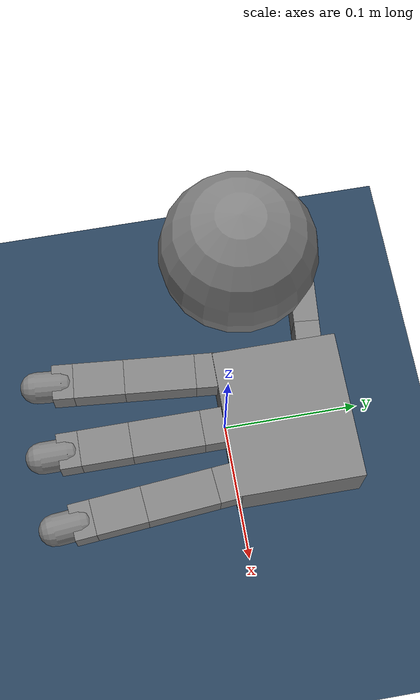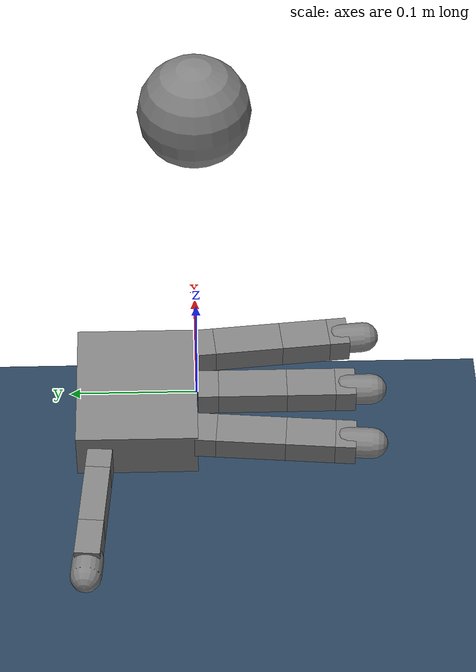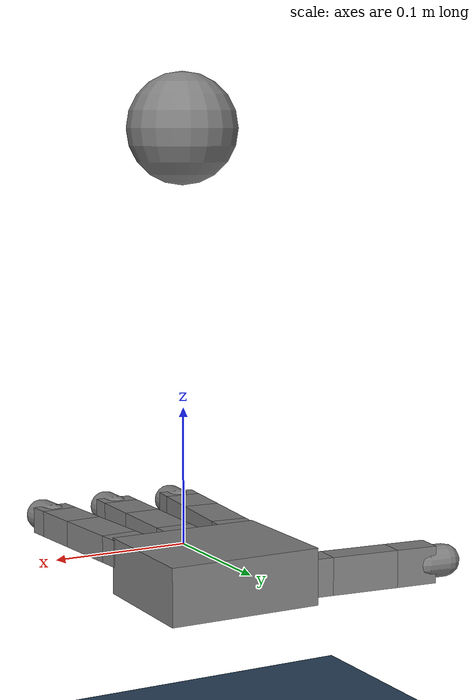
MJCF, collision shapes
<mujoco model="inhand rotation allegro scene">
  <include file="allegro_right.xml"/>
  <include file="ball.xml"/>

  <statistic center="0 0 0.1" extent="0.8"/>

  <visual>
    <headlight diffuse="0.6 0.6 0.6" ambient="0.3 0.3 0.3" specular="0 0 0"/>
    <rgba haze="0.15 0.25 0.35 1"/>
    <!-- default camera -->
    <global azimuth="-130" elevation="-20"/>
  </visual>

  <asset>
    <texture type="skybox" builtin="gradient" rgb1="0.3 0.5 0.7" rgb2="0 0 0" width="512" height="3072"/>
    <texture type="2d" name="groundplane" builtin="checker" mark="edge" rgb1="0.2 0.3 0.4" rgb2="0.1 0.2 0.3"
      markrgb="0.8 0.8 0.8" width="300" height="300"/>
    <material name="groundplane" texture="groundplane" texuniform="true" texrepeat="5 5" reflectance="0.2"/>
  </asset>

  <worldbody>
    <light pos="0 0 1.5" dir="0 0 -1" directional="true"/>
    <geom name="floor" pos="0 0 -0.2" size="0 0 0.05" type="plane" material="groundplane"/>
  </worldbody>

  <keyframe>
    <key name="home"
      qpos="0.082 1.244 0.265 0.298
            0.005 1.096 0.080 0.150
            0.029 1.337 0.285 0.317
            1.104 1.163 0.953 -0.138
            -0.01 -0.01 0.13
            1 0 0 0"
      ctrl="0.082 1.244 0.265 0.298
            0.005 1.096 0.080 0.150
            0.029 1.337 0.285 0.317
            1.104 1.163 0.953 -0.138"/>
  </keyframe>

  <sensor>
    <contact name="ff_contact" geom1="ff_tip_col" geom2="ball" data="found" num="1" reduce="mindist"/>
    <contact name="mf_contact" geom1="mf_tip_col" geom2="ball" data="found" num="1" reduce="mindist"/>
    <contact name="rf_contact" geom1="rf_tip_col" geom2="ball" data="found" num="1" reduce="mindist"/>
    <contact name="th_contact" geom1="th_tip_col" geom2="ball" data="found" num="1" reduce="mindist"/>
  </sensor>

</mujoco>

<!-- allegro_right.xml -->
<mujoco model="allegro_right">
  <compiler angle="radian" meshdir="assets" autolimits="true"/>

  <option cone="elliptic" impratio="40" noslip_iterations="5" noslip_tolerance="1e-6"/>

  <default>
    <default class="allegro_right">
      <joint axis="0 1 0" damping=".1" armature="0.01"/>
      <position kp="1"/>
      <geom density="800"/>

      <default class="visual">
        <geom type="mesh" contype="0" conaffinity="0" group="2" material="black"/>
        <default class="palm_visual">
          <geom mesh="base_link"/>
        </default>
        <default class="base_visual">
          <geom mesh="link_0.0"/>
        </default>
        <default class="proximal_visual">
          <geom mesh="link_1.0"/>
        </default>
        <default class="medial_visual">
          <geom mesh="link_2.0"/>
        </default>
        <default class="distal_visual">
          <geom mesh="link_3.0"/>
        </default>
        <default class="fingertip_visual">
          <geom pos="0 0 0.0267" material="white" mesh="link_3.0_tip"/>
        </default>
        <default class="thumbtip_visual">
          <geom pos="0 0 0.0423" material="white" mesh="link_15.0_tip"/>
        </default>
      </default>

      <default class="collision">
        <geom group="3" type="box" mass="0"/>
        <default class="palm_collision">
          <geom size="0.0204 0.0565 0.0475" pos="-0.0093 0 -0.0475"/>
        </default>
        <default class="base_collision">
          <geom size="0.0098 0.01375 0.0082" pos="0 0 0.0082"/>
          <default class="thumb_base_collision">
            <geom size="0.0179 0.017 0.02275" pos="-0.0179 0.009 0.0145"/>
          </default>
        </default>
        <default class="proximal_collision">
          <geom size="0.0098 0.01375 0.027" pos="0 0 0.027"/>
          <default class="thumb_proximal_collision">
            <geom size="0.0098 0.01375 0.00885" pos="0 0 0.00885"/>
          </default>
        </default>
        <default class="medial_collision">
          <geom size="0.0098 0.01375 0.0192" pos="0 0 0.0192"/>
          <default class="thumb_medial_collision">
            <geom size="0.0098 0.01375 0.0257" pos="0 0 0.0257"/>
          </default>
        </default>
        <default class="distal_collision">
          <geom size="0.0098 0.01375 0.008" pos="0 0 0.008"/>
          <default class="thumb_distal_collision">
            <geom size="0.0098 0.01375 0.0157" pos="0 0 0.0157"/>
          </default>
        </default>
        <default class="fingertip_collision">
          <geom type="capsule" size="0.012 0.01" pos="0 0 0.019"
                condim="6" friction="2.0 0.05 0.01"
                solimp="0.9 0.95 0.001" solref="0.02 1"/>
          <default class="thumbtip_collision">
            <geom type="capsule" size="0.012 0.008" pos="0 0 0.035"
                  condim="6" friction="2.0 0.05 0.01"
                  solimp="0.9 0.95 0.001" solref="0.02 1"/>
          </default>
        </default>
      </default>

      <default class="base">
        <joint axis="0 0 1" range="-0.47 0.47"/>
        <position ctrlrange="-0.47 0.47"/>
      </default>
      <default class="proximal">
        <joint range="-0.196 1.61"/>
        <position ctrlrange="-0.196 1.61"/>
      </default>
      <default class="medial">
        <joint range="-0.174 1.709"/>
        <position ctrlrange="-0.174 1.709"/>
      </default>
      <default class="distal">
        <joint range="-0.227 1.618"/>
        <position ctrlrange="-0.227 1.618"/>
      </default>
      <default class="thumb_base">
        <joint axis="-1 0 0" range="0.263 1.396"/>
        <position ctrlrange="0.263 1.396"/>
      </default>
      <default class="thumb_proximal">
        <joint axis="0 0 1" range="-0.105 1.163"/>
        <position ctrlrange="-0.105 1.163"/>
      </default>
      <default class="thumb_medial">
        <joint range="-0.189 1.644"/>
        <position ctrlrange="-0.189 1.644"/>
      </default>
      <default class="thumb_distal">
        <joint range="-0.162 1.719"/>
        <position ctrlrange="-0.162 1.719"/>
      </default>
    </default>
  </default>

  <asset>
    <material name="black" rgba="0.2 0.2 0.2 1"/>
    <material name="white" rgba="0.9 0.9 0.9 1"/>

    <mesh file="base_link.stl"/>
    <mesh file="link_0.0.stl"/>
    <mesh file="link_1.0.stl"/>
    <mesh file="link_2.0.stl"/>
    <mesh file="link_3.0.stl"/>
    <mesh file="link_3.0_tip.stl"/>
    <mesh file="link_12.0_right.stl"/>
    <mesh file="link_13.0.stl"/>
    <mesh file="link_14.0.stl"/>
    <mesh file="link_15.0.stl"/>
    <mesh file="link_15.0_tip.stl"/>
  </asset>

  <worldbody>
    <body name="palm" quat="0.5 0.5 -0.5 0.5" childclass="allegro_right" gravcomp="1">
      <geom class="palm_visual" mesh="base_link"/>
      <geom class="palm_collision"/>
      <!-- First finger -->
      <body name="ff_base" pos="0 0.0435 -0.001542" quat="0.999048 -0.0436194 0 0">
        <joint name="ffj0" class="base"/>
        <geom class="base_visual"/>
        <geom class="base_collision"/>
        <body name="ff_proximal" pos="0 0 0.0164">
          <joint name="ffj1" class="proximal"/>
          <geom class="proximal_visual"/>
          <geom class="proximal_collision"/>
          <body name="ff_medial" pos="0 0 0.054">
            <joint name="ffj2" class="medial"/>
            <geom class="medial_visual"/>
            <geom class="medial_collision"/>
            <body name="ff_distal" pos="0 0 0.0384">
              <joint name="ffj3" class="distal"/>
              <geom class="distal_visual"/>
              <geom class="distal_collision"/>
              <body name="ff_tip">
                <geom class="fingertip_visual"/>
                <geom name="ff_tip_col" class="fingertip_collision"/>
              </body>
            </body>
          </body>
        </body>
      </body>
      <!-- Middle finger -->
      <body name="mf_base" pos="0 0 0.0007">
        <joint name="mfj0" class="base"/>
        <geom class="base_visual"/>
        <geom class="base_collision"/>
        <body name="mf_proximal" pos="0 0 0.0164">
          <joint name="mfj1" class="proximal"/>
          <geom class="proximal_visual"/>
          <geom class="proximal_collision"/>
          <body name="mf_medial" pos="0 0 0.054">
            <joint name="mfj2" class="medial"/>
            <geom class="medial_visual"/>
            <geom class="medial_collision"/>
            <body name="mf_distal" pos="0 0 0.0384">
              <joint name="mfj3" class="distal"/>
              <geom class="distal_visual"/>
              <geom class="distal_collision"/>
              <body name="mf_tip">
                <geom class="fingertip_visual"/>
                <geom name="mf_tip_col" class="fingertip_collision"/>
              </body>
            </body>
          </body>
        </body>
      </body>
      <!-- Ring finger -->
      <body name="rf_base" pos="0 -0.0435 -0.001542" quat="0.999048 0.0436194 0 0">
        <joint name="rfj0" class="base"/>
        <geom class="base_visual"/>
        <geom class="base_collision"/>
        <body name="rf_proximal" pos="0 0 0.0164">
          <joint name="rfj1" class="proximal"/>
          <geom class="proximal_visual"/>
          <geom class="proximal_collision"/>
          <body name="rf_medial" pos="0 0 0.054">
            <joint name="rfj2" class="medial"/>
            <geom class="medial_visual"/>
            <geom class="medial_collision"/>
            <body name="rf_distal" pos="0 0 0.0384">
              <joint name="rfj3" class="distal"/>
              <geom class="distal_visual"/>
              <geom class="distal_collision"/>
              <body name="rf_tip">
                <geom class="fingertip_visual"/>
                <geom name="rf_tip_col" class="fingertip_collision"/>
              </body>
            </body>
          </body>
        </body>
      </body>
      <!-- Thumb -->
      <body name="th_base" pos="-0.0182 0.019333 -0.045987" quat="0.477714 -0.521334 -0.521334 -0.477714">
        <joint name="thj0" class="thumb_base"/>
        <geom class="visual" mesh="link_12.0_right"/>
        <geom class="thumb_base_collision"/>
        <body name="th_proximal" pos="-0.027 0.005 0.0399">
          <joint name="thj1" class="thumb_proximal"/>
          <geom class="visual" mesh="link_13.0"/>
          <geom class="thumb_proximal_collision"/>
          <body name="th_medial" pos="0 0 0.0177">
            <joint name="thj2" class="thumb_medial"/>
            <geom class="visual" mesh="link_14.0"/>
            <geom class="thumb_medial_collision"/>
            <body name="th_distal" pos="0 0 0.0514">
              <joint name="thj3" class="thumb_distal"/>
              <geom class="visual" mesh="link_15.0"/>
              <geom class="thumb_distal_collision"/>
              <body name="th_tip">
                <geom class="thumbtip_visual"/>
                <geom name="th_tip_col" class="thumbtip_collision"/>
              </body>
            </body>
          </body>
        </body>
      </body>
    </body>
  </worldbody>

  <contact>
    <exclude body1="palm" body2="ff_base"/>
    <exclude body1="palm" body2="mf_base"/>
    <exclude body1="palm" body2="rf_base"/>
    <exclude body1="palm" body2="th_base"/>
    <exclude body1="palm" body2="th_proximal"/>
  </contact>

  <actuator>
    <position name="ffa0" joint="ffj0" class="base"/>
    <position name="ffa1" joint="ffj1" class="proximal"/>
    <position name="ffa2" joint="ffj2" class="medial"/>
    <position name="ffa3" joint="ffj3" class="distal"/>
    <position name="mfa0" joint="mfj0" class="base"/>
    <position name="mfa1" joint="mfj1" class="proximal"/>
    <position name="mfa2" joint="mfj2" class="medial"/>
    <position name="mfa3" joint="mfj3" class="distal"/>
    <position name="rfa0" joint="rfj0" class="base"/>
    <position name="rfa1" joint="rfj1" class="proximal"/>
    <position name="rfa2" joint="rfj2" class="medial"/>
    <position name="rfa3" joint="rfj3" class="distal"/>
    <position name="tha0" joint="thj0" class="thumb_base"/>
    <position name="tha1" joint="thj1" class="thumb_proximal"/>
    <position name="tha2" joint="thj2" class="thumb_medial"/>
    <position name="tha3" joint="thj3" class="thumb_distal"/>
  </actuator>
</mujoco>

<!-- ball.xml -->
<mujoco>
  <asset>
    <texture name="tennis_tex" type="2d" file="assets/ycb/056_tennis_ball/google_16k/texture_map.png"/>
    <material name="tennis_mat" texture="tennis_tex"/>

    <!-- meshdir is defined in allegro_right.xml -->
    <mesh name="tennis_ball" file="ycb/056_tennis_ball/google_16k/textured.obj" scale="1.1935 1.1935 1.1935"/>
  </asset>

  <worldbody>
    <body name="ball" pos="0 0 0.3">
      <freejoint name="ball_joint"/>
      <geom name="ball" type="sphere" size="0.04" mass="0.05" condim="6"
            friction="2.0 0.05 0.01"
            solimp="0.9 0.95 0.001" solref="0.02 1"/>
      <geom name="ball_visual" type="mesh" mesh="tennis_ball" material="tennis_mat" contype="0" conaffinity="0" group="1"/>
      <inertial pos="0 0 0" mass="0.05" diaginertia="0.0001 0.0001 0.0001"/>
    </body>
  </worldbody>
</mujoco>
